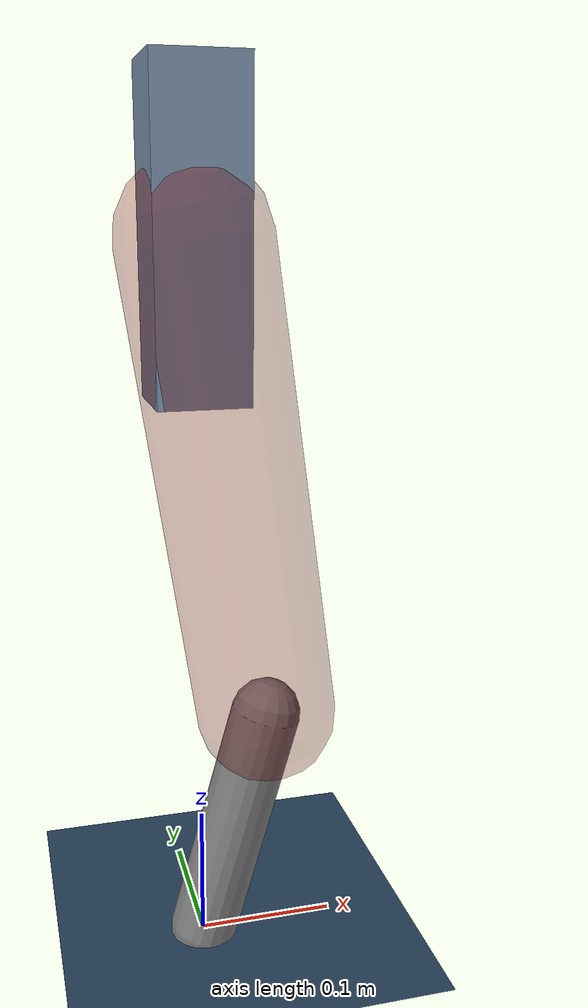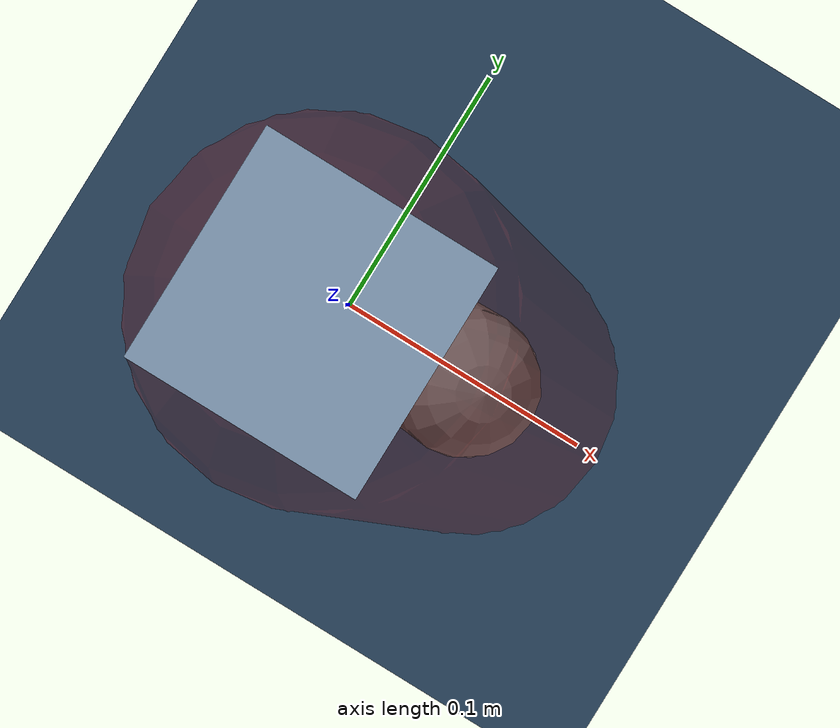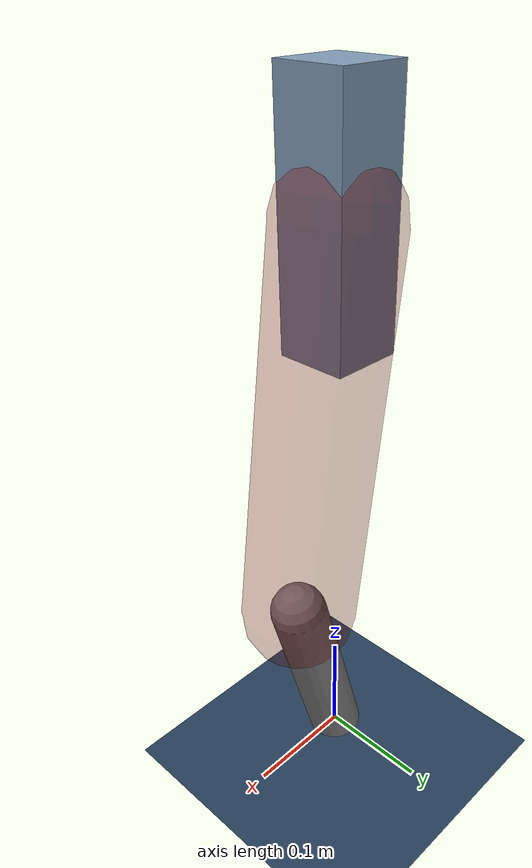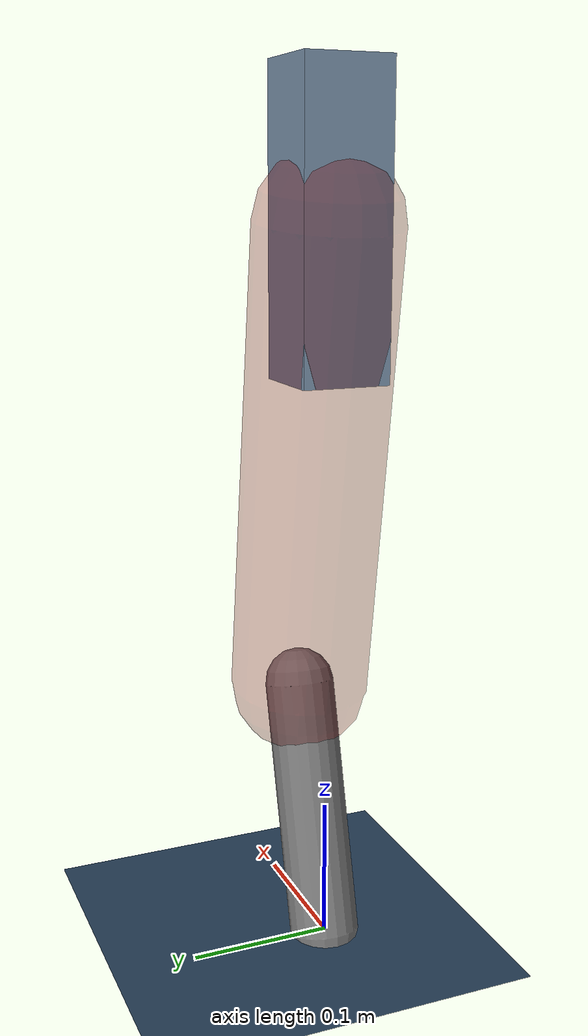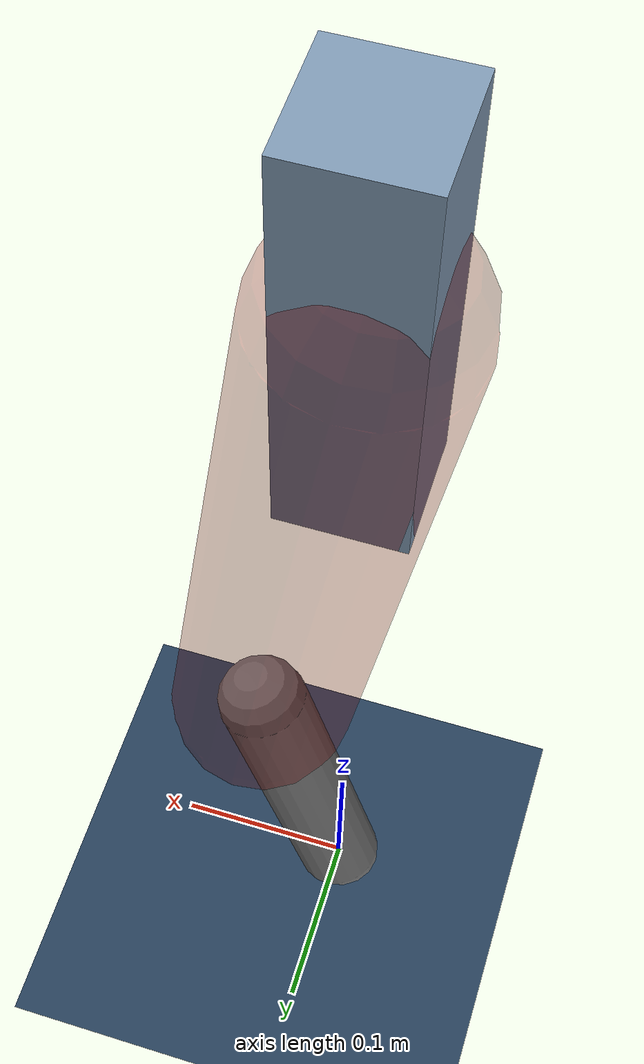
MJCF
<mujoco model="Hopper2D">
	<compiler inertiafromgeom="true" angle="radian" />
	<option timestep="0.001" integrator="implicit" cone="elliptic" solver="Newton" tolerance="1e-10" />

	<default>
		<geom contype="1" conaffinity="1" condim="3" friction="2 0.005 0.0001" solref="0.005 1" />
		<joint limited="true" damping="0.1" />
	</default>

	<asset>
		<texture name="skybox" type="skybox" builtin="gradient" rgb1=".4 .6 .8" rgb2="0 0 0" width="800" height="800" />
		<texture name="grid" type="2d" builtin="checker" rgb1=".1 .2 .3" rgb2=".2 .3 .4" width="300" height="300" mark="edge" markrgb=".2 .3 .4" />
		<material name="ground" texture="grid" texrepeat="1 1" texuniform="true" reflectance="0.1" />
		<material name="leg" rgba="0.5 0.6 0.7 1" />
	</asset>

	<worldbody>

		<geom name="floor" type="plane" size="5 5 0.25" material="ground" />

		<light directional="false" diffuse="0.8 0.8 0.8" specular="0.3 0.3 0.3" pos="0 0 2" dir="0 0 -1" />
		<light mode="targetbodycom" target="base" directional="false" diffuse="0.8 0.8 0.8" specular="0.3 0.3 0.3" pos="0 0 2" dir="0 0 -1" />

		<camera name="fixed" pos="0 -2 1" xyaxes="1 0 0 0 0 1" />
		<camera name="tracking" mode="trackcom" pos="0 -3 1" />

		<body name="root" pos="0 0 0.5047187675311037">
			<joint name="slide_x" type="slide" axis="1 0 0" range="-100 100" />
			<joint name="slide_z" type="slide" axis="0 0 1" range="0 10" />

			<body name="base" pos="0 0 0">
				<geom name="torso" type="box" size="0.03 0.03 0.1" mass="3.102" material="leg" />

				<body name="link1" pos="0 0 0" euler="0 1.4239659613297582 0">
					<joint type="hinge" axis="0 -1 0" pos="0 0 0" name="hinge1" limited="true" range="-3.14 3.14" stiffness="0" damping="0.1" />
					<geom name="thigh" type="capsule" fromto="0 0 0 0.3303236833505592 0 0" size="0.05" rgba="0.5 0 0 0.3" mass="1.0717063133815659" />

					<body name="link2" pos="0.3303236833505592 0 0" euler="0 0.4120139970907778 0">
						<joint type="hinge" axis="0 -1 0" pos="0 0 0" name="hinge2" limited="true" range="-3.14 3.14" stiffness="0" damping="0.1" />
						<geom name="shank" type="capsule" fromto="0 0 0 0.18439508418054443 0 0" size="0.025" mass="0.38765557576249" />

					</body>
				</body>
			</body>
		</body>
	</worldbody>

	<actuator>
		<motor name="torque1" joint="hinge1" ctrlrange="-92.17074340497312 92.17074340497312" ctrllimited="true" gear="1" />
		<motor name="torque2" joint="hinge2" ctrlrange="-90.04195734304591 90.04195734304591" ctrllimited="true" gear="1" />
	</actuator>
</mujoco>
